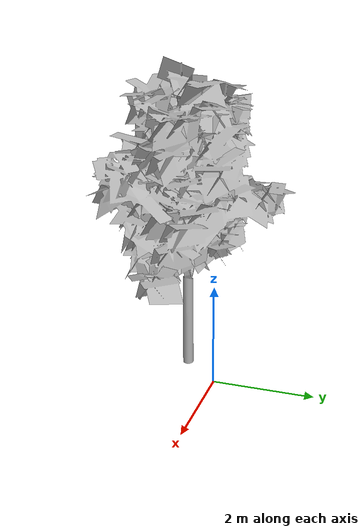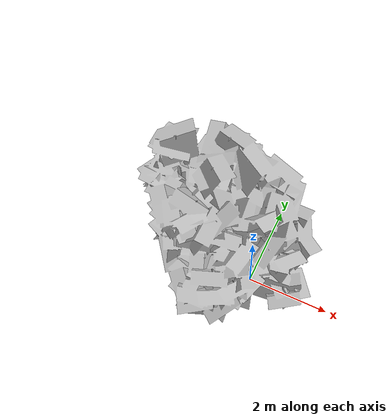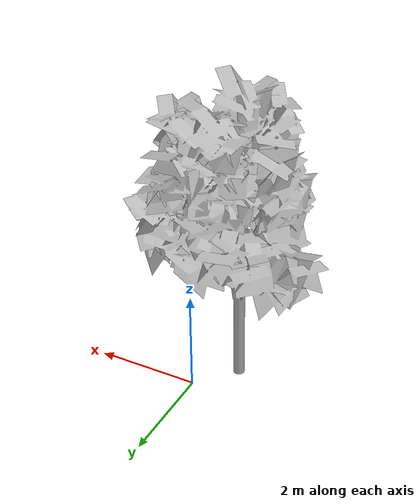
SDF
<?xml version="1.0" ?>
<sdf version="1.7">
  <model name="benchmark_world_jean_tree">
    <static>true</static>
    <link name="link">
      <!-- Physical trunk used by LiDAR; DAP=0.210 m. -->
      <collision name="collision_trunk">
        <pose>0 0 1.500000 0 0 0</pose>
        <geometry><cylinder><radius>0.105000</radius><length>3.000000</length></cylinder></geometry>
      </collision>
      <!-- Crown collision stays above the 2 m lawnmower flight plane. -->
      <collision name="collision_crown">
        <pose>0 0 4.400000 0 0 0</pose>
        <geometry><sphere><radius>1.900000</radius></sphere></geometry>
      </collision>
      <visual name="source_mesh_visual">
        <pose>-0.642000 -0.739000 -0.005000 0.000000000 0 0</pose>
        <geometry>
          <mesh>
            <uri>model://world_jean_tree/meshes/world_jean_tree.obj</uri>
            <scale>0.700000 0.700000 1.000000</scale>
          </mesh>
        </geometry>
      </visual>
    </link>
  </model>
</sdf>
